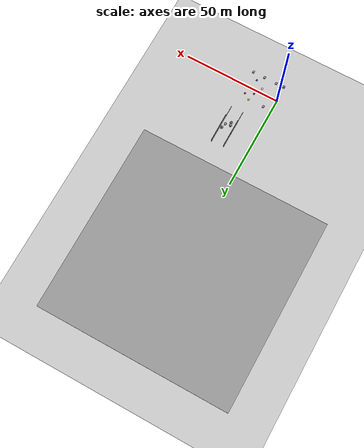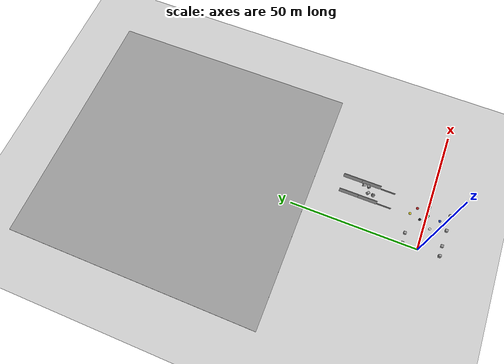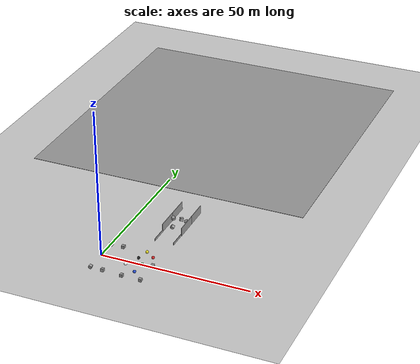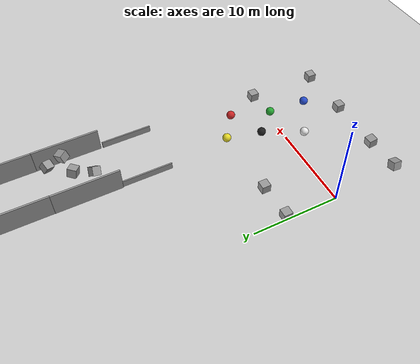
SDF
<sdf version="1.6">
 <world name="default">
  <light name="sun" type="directional">
   <pose>0 0 10 0 -0 0</pose>
   <diffuse>0.8 0.8 0.8 1</diffuse>
   <specular>0.2 0.2 0.2 1</specular>
   <attenuation>
    <range>1000</range>
    <constant>0.9</constant>
    <linear>0.01</linear>
    <quadratic>0.001</quadratic>
   </attenuation>
   <direction>-0.5 0.1 -0.9</direction>
  </light>
  <model name="ground_plane">
   <static>1</static>
   <link name="link">
    <collision name="collision">
     <geometry><plane><normal>0 0 1</normal><size>100 100</size></plane></geometry>
     <surface>
      <contact><collide_bitmask>65535</collide_bitmask></contact>
      <friction><ode><mu>100</mu><mu2>50</mu2></ode></friction>
     </surface>
    </collision>
    <visual name="visual">
     <cast_shadows>0</cast_shadows>
     <geometry><plane><normal>0 0 1</normal><size>100 100</size></plane></geometry>
     <material>
      <script><uri>file://media/materials/scripts/gazebo.material</uri><name>Gazebo/Grey</name></script>
     </material>
    </visual>
   </link>
  </model>
  <gravity>0 0 -9.8</gravity>
  <magnetic_field>6e-06 2.3e-05 -4.2e-05</magnetic_field>
  <atmosphere type="adiabatic"/>
  <physics name="default_physics" default="0" type="ode">
   <max_step_size>0.001</max_step_size>
   <real_time_factor>1</real_time_factor>
   <real_time_update_rate>1000</real_time_update_rate>
  </physics>
  <scene><ambient>0.4 0.4 0.4 1</ambient><background>0.7 0.7 0.7 1</background><shadows>1</shadows></scene>
  <audio><device>default</device></audio>
  <spherical_coordinates>
   <surface_model>EARTH_WGS84</surface_model>
   <latitude_deg>0</latitude_deg>
   <longitude_deg>0</longitude_deg>
   <elevation>0</elevation>
   <heading_deg>0</heading_deg>
  </spherical_coordinates>
  <model name="unit_sphere">
   <pose>15.7935 4.16764 0.5 0 -0 0</pose>
   <link name="link">
    <inertial>
     <mass>1</mass>
     <inertia><ixx>0.1</ixx><ixy>0</ixy><ixz>0</ixz><iyy>0.1</iyy><iyz>0</iyz><izz>0.1</izz></inertia>
    </inertial>
    <collision name="collision"><geometry><sphere><radius>0.5</radius></sphere></geometry></collision>
    <visual name="visual">
     <geometry><sphere><radius>0.5</radius></sphere></geometry>
     <material>
      <script><name>Gazebo/Red</name><uri>file://media/materials/scripts/gazebo.material</uri></script>
     </material>
    </visual>
   </link>
  </model>
  <model name="unit_sphere_0">
   <pose>14.1862 -0.336793 0.5 0 -0 0</pose>
   <link name="link">
    <inertial>
     <mass>1</mass>
     <inertia><ixx>0.1</ixx><ixy>0</ixy><ixz>0</ixz><iyy>0.1</iyy><iyz>0</iyz><izz>0.1</izz></inertia>
    </inertial>
    <collision name="collision"><geometry><sphere><radius>0.5</radius></sphere></geometry></collision>
    <visual name="visual">
     <geometry><sphere><radius>0.5</radius></sphere></geometry>
     <material>
      <script><name>Gazebo/Green</name><uri>file://media/materials/scripts/gazebo.material</uri></script>
     </material>
    </visual>
   </link>
  </model>
  <model name="unit_sphere_1">
   <pose>13.9059 -4.94913 0.5 0 -0 0</pose>
   <link name="link">
    <inertial>
     <mass>1</mass>
     <inertia><ixx>0.1</ixx><ixy>0</ixy><ixz>0</ixz><iyy>0.1</iyy><iyz>0</iyz><izz>0.1</izz></inertia>
    </inertial>
    <collision name="collision"><geometry><sphere><radius>0.5</radius></sphere></geometry></collision>
    <visual name="visual">
     <geometry><sphere><radius>0.5</radius></sphere></geometry>
     <material>
      <script><name>Gazebo/Blue</name><uri>file://media/materials/scripts/gazebo.material</uri></script>
     </material>
    </visual>
   </link>
  </model>
  <model name="ground_plane_0">
   <static>1</static>
   <link name="link">
    <collision name="collision">
     <geometry><plane><normal>0 0 1</normal><size>100 100</size></plane></geometry>
     <surface><friction><ode><mu>100</mu><mu2>50</mu2></ode></friction></surface>
    </collision>
    <visual name="visual">
     <cast_shadows>0</cast_shadows>
     <geometry><plane><normal>0 0 1</normal><size>100 100</size></plane></geometry>
     <material>
      <script><uri>file://media/materials/scripts/gazebo.material</uri><name>Gazebo/Grey</name></script>
     </material>
    </visual>
   </link>
   <pose>0.033354 95.0033 0 0 -0 0</pose>
  </model>
  <model name="grey_wall_clone_clone_clone_clone_clone_0_clone">
   <static>1</static>
   <link name="link">
    <pose>0 0 1.4 0 -0 0</pose>
    <collision name="collision"><geometry><box><size>7.5 0.2 2.8</size></box></geometry></collision>
    <visual name="visual">
     <cast_shadows>0</cast_shadows>
     <geometry><box><size>7.5 0.2 2.8</size></box></geometry>
     <material>
      <script>
       <uri>model://grey_wall/materials/scripts</uri>
       <uri>model://grey_wall/materials/textures</uri>
       <name>vrc/grey_wall</name>
      </script>
     </material>
    </visual>
   </link>
   <pose>11.7534 23.1982 0 0 -0 1.57375</pose>
  </model>
  <model name="grey_wall_clone_clone_clone_clone_clone_0_clone_clone">
   <static>1</static>
   <link name="link">
    <pose>0 0 1.4 0 -0 0</pose>
    <collision name="collision"><geometry><box><size>7.5 0.2 2.8</size></box></geometry></collision>
    <visual name="visual">
     <cast_shadows>0</cast_shadows>
     <geometry><box><size>7.5 0.2 2.8</size></box></geometry>
     <material>
      <script>
       <uri>model://grey_wall/materials/scripts</uri>
       <uri>model://grey_wall/materials/textures</uri>
       <name>vrc/grey_wall</name>
      </script>
     </material>
    </visual>
   </link>
   <pose>18.3259 23.4162 0 0 -0 1.57375</pose>
  </model>
  <model name="grey_wall_clone_clone_clone_clone_clone_0_clone_clone_clone">
   <static>1</static>
   <link name="link">
    <pose>0 0 1.4 0 -0 0</pose>
    <collision name="collision"><geometry><box><size>7.5 0.2 2.8</size></box></geometry></collision>
    <visual name="visual">
     <cast_shadows>0</cast_shadows>
     <geometry><box><size>7.5 0.2 2.8</size></box></geometry>
     <material>
      <script>
       <uri>model://grey_wall/materials/scripts</uri>
       <uri>model://grey_wall/materials/textures</uri>
       <name>vrc/grey_wall</name>
      </script>
     </material>
    </visual>
   </link>
   <pose>18.2867 30.893 0 0 -0 1.57375</pose>
  </model>
  <model name="grey_wall_clone_clone_clone_clone_clone_0_clone_clone_clone_0">
   <static>1</static>
   <link name="link">
    <pose>0 0 1.4 0 -0 0</pose>
    <collision name="collision"><geometry><box><size>7.5 0.2 2.8</size></box></geometry></collision>
    <visual name="visual">
     <cast_shadows>0</cast_shadows>
     <geometry><box><size>7.5 0.2 2.8</size></box></geometry>
     <material>
      <script>
       <uri>model://grey_wall/materials/scripts</uri>
       <uri>model://grey_wall/materials/textures</uri>
       <name>vrc/grey_wall</name>
      </script>
     </material>
    </visual>
   </link>
   <pose>11.7525 30.698 0 0 -0 1.57375</pose>
  </model>
  <model name="unit_box_clone">
   <pose>13.5971 23.8224 3.06861 -2.89918 -0.115095 0.894216</pose>
   <link name="unit_box_clone::link">
    <inertial>
     <mass>1</mass>
     <inertia>
      <ixx>0.166667</ixx>
      <ixy>0</ixy>
      <ixz>0</ixz>
      <iyy>0.166667</iyy>
      <iyz>0</iyz>
      <izz>0.166667</izz>
     </inertia>
    </inertial>
    <collision name="collision"><geometry><box><size>1 1 1</size></box></geometry></collision>
    <visual name="visual">
     <geometry><box><size>1 1 1</size></box></geometry>
     <material>
      <script><name>Gazebo/Grey</name><uri>file://media/materials/scripts/gazebo.material</uri></script>
     </material>
    </visual>
   </link>
  </model>
  <model name="unit_box_clone_0">
   <pose>17.1369 26.0129 1.31385 0.559007 0.991094 0.916366</pose>
   <link name="unit_box_clone_0::link">
    <inertial>
     <mass>1</mass>
     <inertia>
      <ixx>0.166667</ixx>
      <ixy>0</ixy>
      <ixz>0</ixz>
      <iyy>0.166667</iyy>
      <iyz>0</iyz>
      <izz>0.166667</izz>
     </inertia>
    </inertial>
    <collision name="collision"><geometry><box><size>1 1 1</size></box></geometry></collision>
    <visual name="visual">
     <geometry><box><size>1 1 1</size></box></geometry>
     <material>
      <script><name>Gazebo/Grey</name><uri>file://media/materials/scripts/gazebo.material</uri></script>
     </material>
    </visual>
   </link>
  </model>
  <model name="unit_box_clone_2">
   <pose>14.2611 21.6371 1.21861 -0.880442 -0.391467 1.73156</pose>
   <link name="unit_box_clone_2::link">
    <inertial>
     <mass>1</mass>
     <inertia>
      <ixx>0.166667</ixx>
      <ixy>0</ixy>
      <ixz>0</ixz>
      <iyy>0.166667</iyy>
      <iyz>0</iyz>
      <izz>0.166667</izz>
     </inertia>
    </inertial>
    <collision name="collision"><geometry><box><size>1 1 1</size></box></geometry></collision>
    <visual name="visual">
     <geometry><box><size>1 1 1</size></box></geometry>
     <material>
      <script><name>Gazebo/Grey</name><uri>file://media/materials/scripts/gazebo.material</uri></script>
     </material>
    </visual>
   </link>
  </model>
  <model name="unit_box_clone_3">
   <pose>16.2201 24.2873 3.03862 2.90155 -0.117711 -0.915769</pose>
   <link name="unit_box_clone_3::link">
    <inertial>
     <mass>1</mass>
     <inertia>
      <ixx>0.166667</ixx>
      <ixy>0</ixy>
      <ixz>0</ixz>
      <iyy>0.166667</iyy>
      <iyz>0</iyz>
      <izz>0.166667</izz>
     </inertia>
    </inertial>
    <collision name="collision"><geometry><box><size>1 1 1</size></box></geometry></collision>
    <visual name="visual">
     <geometry><box><size>1 1 1</size></box></geometry>
     <material>
      <script><name>Gazebo/Grey</name><uri>file://media/materials/scripts/gazebo.material</uri></script>
     </material>
    </visual>
   </link>
  </model>
  <model name="unit_sphere_2">
   <pose>9.45407 -2.15167 0.5 0 -0 0</pose>
   <link name="link">
    <inertial>
     <mass>1</mass>
     <inertia><ixx>0.1</ixx><ixy>0</ixy><ixz>0</ixz><iyy>0.1</iyy><iyz>0</iyz><izz>0.1</izz></inertia>
    </inertial>
    <collision name="collision"><geometry><sphere><radius>0.5</radius></sphere></geometry></collision>
    <visual name="visual">
     <geometry><sphere><radius>0.5</radius></sphere></geometry>
     <material>
      <script><name>Gazebo/White</name><uri>file://media/materials/scripts/gazebo.material</uri></script>
     </material>
    </visual>
   </link>
  </model>
  <model name="unit_sphere_3">
   <pose>11.7082 2.2915 0.5 0 -0 0</pose>
   <link name="link">
    <inertial>
     <mass>1</mass>
     <inertia><ixx>0.1</ixx><ixy>0</ixy><ixz>0</ixz><iyy>0.1</iyy><iyz>0</iyz><izz>0.1</izz></inertia>
    </inertial>
    <collision name="collision"><geometry><sphere><radius>0.5</radius></sphere></geometry></collision>
    <visual name="visual">
     <geometry><sphere><radius>0.5</radius></sphere></geometry>
     <material>
      <script><name>Gazebo/Black</name><uri>file://media/materials/scripts/gazebo.material</uri></script>
     </material>
    </visual>
   </link>
  </model>
  <model name="Untitled">
   <pose>15.0604 16.5465 0 0 -0 0</pose>
   <link name="Wall_0">
    <collision name="Wall_0_Collision">
     <geometry><box><size>5.817 0.15 0.8</size></box></geometry>
     <pose>0 0 0.4 0 -0 0</pose>
    </collision>
    <visual name="Wall_0_Visual">
     <pose>0 0 0.4 0 -0 0</pose>
     <geometry><box><size>5.817 0.15 0.8</size></box></geometry>
     <material>
      <script><uri>file://media/materials/scripts/gazebo.material</uri><name>Gazebo/Grey</name></script>
      <ambient>1 1 1 1</ambient>
     </material>
     <meta><layer>0</layer></meta>
    </visual>
    <pose>-3.215 0 0 0 -0 1.5708</pose>
   </link>
   <link name="Wall_2">
    <collision name="Wall_2_Collision">
     <geometry><box><size>5.817 0.15 0.8</size></box></geometry>
     <pose>0 0 0.4 0 -0 0</pose>
    </collision>
    <visual name="Wall_2_Visual">
     <pose>0 0 0.4 0 -0 0</pose>
     <geometry><box><size>5.817 0.15 0.8</size></box></geometry>
     <material>
      <script><uri>file://media/materials/scripts/gazebo.material</uri><name>Gazebo/Grey</name></script>
      <ambient>1 1 1 1</ambient>
     </material>
     <meta><layer>0</layer></meta>
    </visual>
    <pose>3.215 0 0 0 -0 1.5708</pose>
   </link>
   <static>1</static>
  </model>
  <model name="unit_sphere_4">
   <pose>12.6956 6.33189 0.5 0 -0 0</pose>
   <link name="link">
    <inertial>
     <mass>1</mass>
     <inertia><ixx>0.1</ixx><ixy>0</ixy><ixz>0</ixz><iyy>0.1</iyy><iyz>0</iyz><izz>0.1</izz></inertia>
    </inertial>
    <collision name="collision"><geometry><sphere><radius>0.5</radius></sphere></geometry></collision>
    <visual name="visual">
     <geometry><sphere><radius>0.5</radius></sphere></geometry>
     <material>
      <script><name>Gazebo/Yellow</name><uri>file://media/materials/scripts/gazebo.material</uri></script>
     </material>
    </visual>
   </link>
  </model>
  <model name="unit_box_3">
   <pose>17.6259 0.07818 0.500384 0.000343 -0.000346 -0.004724</pose>
   <link name="unit_box_3::link">
    <inertial>
     <mass>1</mass>
     <inertia>
      <ixx>0.166667</ixx>
      <ixy>0</ixy>
      <ixz>0</ixz>
      <iyy>0.166667</iyy>
      <iyz>0</iyz>
      <izz>0.166667</izz>
     </inertia>
    </inertial>
    <collision name="collision"><geometry><box><size>1 1 1</size></box></geometry></collision>
    <visual name="visual">
     <geometry><box><size>1 1 1</size></box></geometry>
     <material>
      <script><name>Gazebo/Grey</name><uri>file://media/materials/scripts/gazebo.material</uri></script>
     </material>
    </visual>
   </link>
  </model>
  <model name="unit_box_3_clone">
   <pose>4.51843 6.1355 0.500715 0.000854 -0.000573 -0.008599</pose>
   <link name="unit_box_3_clone::unit_box_3::link">
    <inertial>
     <mass>1</mass>
     <inertia>
      <ixx>0.166667</ixx>
      <ixy>0</ixy>
      <ixz>0</ixz>
      <iyy>0.166667</iyy>
      <iyz>0</iyz>
      <izz>0.166667</izz>
     </inertia>
    </inertial>
    <collision name="collision"><geometry><box><size>1 1 1</size></box></geometry></collision>
    <visual name="visual">
     <geometry><box><size>1 1 1</size></box></geometry>
     <material>
      <script><name>Gazebo/Grey</name><uri>file://media/materials/scripts/gazebo.material</uri></script>
     </material>
    </visual>
   </link>
  </model>
  <model name="unit_box">
   <pose>17.4452 -8.20598 0.500694 -0.000832 0.000554 -0.010141</pose>
   <link name="unit_box::link">
    <inertial>
     <mass>1</mass>
     <inertia>
      <ixx>0.166667</ixx>
      <ixy>0</ixy>
      <ixz>0</ixz>
      <iyy>0.166667</iyy>
      <iyz>0</iyz>
      <izz>0.166667</izz>
     </inertia>
    </inertial>
    <collision name="collision"><geometry><box><size>1 1 1</size></box></geometry></collision>
    <visual name="visual">
     <geometry><box><size>1 1 1</size></box></geometry>
     <material>
      <script><name>Gazebo/Grey</name><uri>file://media/materials/scripts/gazebo.material</uri></script>
     </material>
    </visual>
   </link>
  </model>
  <model name="unit_box_3_clone_clone">
   <pose>0.499742 -8.03267 0.762671 0.100515 0.314671 0.007468</pose>
   <link name="unit_box_3_clone_clone::unit_box_3_clone::unit_box_3::link">
    <inertial>
     <mass>1</mass>
     <inertia>
      <ixx>0.166667</ixx>
      <ixy>0</ixy>
      <ixz>0</ixz>
      <iyy>0.166667</iyy>
      <iyz>0</iyz>
      <izz>0.166667</izz>
     </inertia>
    </inertial>
    <collision name="collision"><geometry><box><size>1 1 1</size></box></geometry></collision>
    <visual name="visual">
     <geometry><box><size>1 1 1</size></box></geometry>
     <material>
      <script><name>Gazebo/Grey</name><uri>file://media/materials/scripts/gazebo.material</uri></script>
     </material>
    </visual>
   </link>
  </model>
  <model name="unit_box_3_clone_clone_clone">
   <pose>0.374657 6.00095 0.500243 -0.000228 0.000228 -0.008599</pose>
   <link name="unit_box_3_clone_clone_clone::unit_box_3_clone::unit_box_3::link">
    <inertial>
     <mass>1</mass>
     <inertia>
      <ixx>0.166667</ixx>
      <ixy>0</ixy>
      <ixz>0</ixz>
      <iyy>0.166667</iyy>
      <iyz>0</iyz>
      <izz>0.166667</izz>
     </inertia>
    </inertial>
    <collision name="collision"><geometry><box><size>1 1 1</size></box></geometry></collision>
    <visual name="visual">
     <geometry><box><size>1 1 1</size></box></geometry>
     <material>
      <script><name>Gazebo/Grey</name><uri>file://media/materials/scripts/gazebo.material</uri></script>
     </material>
    </visual>
   </link>
  </model>
  <model name="unit_box_3_clone_clone_clone_0">
   <pose>4.61824 -8.00887 0.604421 -0.125302 -0.000324 -0.011107</pose>
   <link name="unit_box_3_clone_clone_clone_0::unit_box_3_clone_clone::unit_box_3_clone::unit_box_3::link">
    <inertial>
     <mass>1</mass>
     <inertia>
      <ixx>0.166667</ixx>
      <ixy>0</ixy>
      <ixz>0</ixz>
      <iyy>0.166667</iyy>
      <iyz>0</iyz>
      <izz>0.166667</izz>
     </inertia>
    </inertial>
    <collision name="collision"><geometry><box><size>1 1 1</size></box></geometry></collision>
    <visual name="visual">
     <geometry><box><size>1 1 1</size></box></geometry>
     <material>
      <script><name>Gazebo/Grey</name><uri>file://media/materials/scripts/gazebo.material</uri></script>
     </material>
    </visual>
   </link>
  </model>
  <model name="unit_box_3_clone_clone_clone_0_clone">
   <pose>11.155 -8.18948 0.500002 4e-06 -0 -0.011119</pose>
   <link name="unit_box_3_clone_clone_clone_0::unit_box_3_clone_clone::unit_box_3_clone::unit_box_3::link">
    <inertial>
     <mass>1</mass>
     <inertia>
      <ixx>0.166667</ixx>
      <ixy>0</ixy>
      <ixz>0</ixz>
      <iyy>0.166667</iyy>
      <iyz>0</iyz>
      <izz>0.166667</izz>
     </inertia>
    </inertial>
    <collision name="collision"><geometry><box><size>1 1 1</size></box></geometry></collision>
    <visual name="visual">
     <geometry><box><size>1 1 1</size></box></geometry>
     <material>
      <script><name>Gazebo/Grey</name><uri>file://media/materials/scripts/gazebo.material</uri></script>
     </material>
    </visual>
   </link>
  </model>
 </world>
</sdf>
